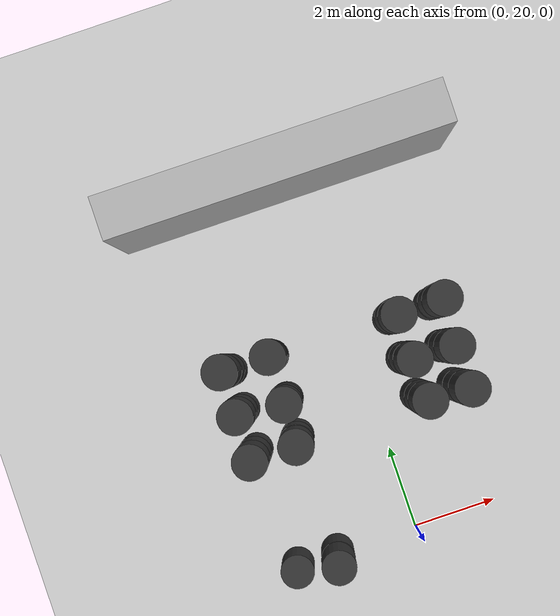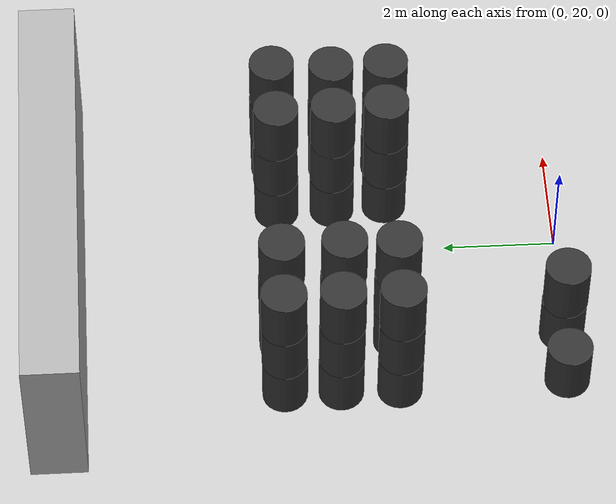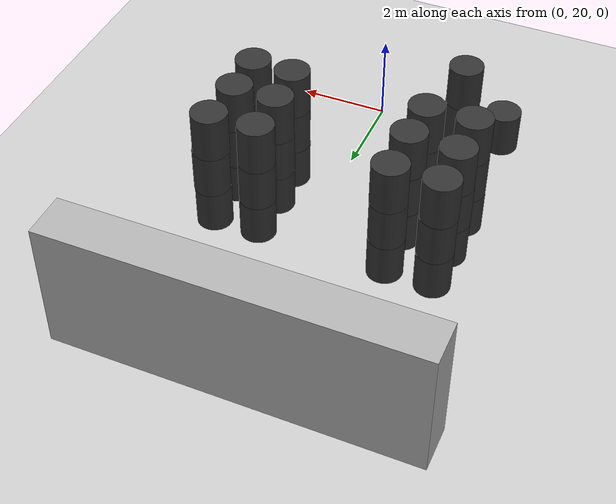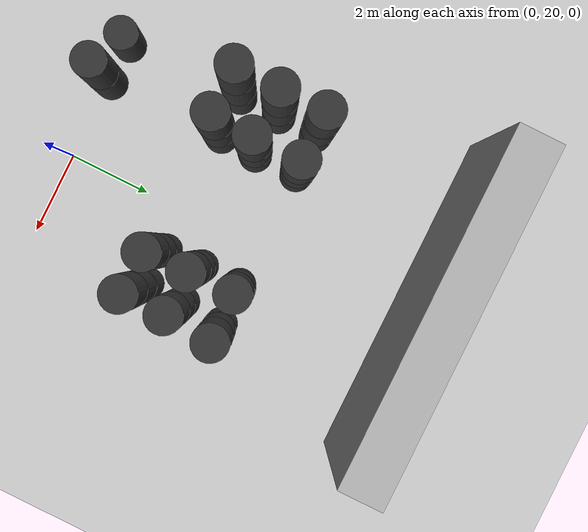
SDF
<sdf version="1.6">
 <world name="default">
  <include><uri>model://ground_plane</uri></include>
  <model name="wall_3">
   <pose frame="sim_world">-0.5 29.0 1.5 0 0 0</pose>
   <static>True</static>
   <link name="wall_3_link">
    <inertial>
     <mass>100</mass>
     <inertia>
      <ixx>0.166667</ixx>
      <ixy>0</ixy>
      <ixz>0</ixz>
      <iyy>0.166667</iyy>
      <iyz>0</iyz>
      <izz>0.166667</izz>
     </inertia>
    </inertial>
    <collision name="wall_3_collision">
     <geometry><box><size>8.0 1.0 3.0</size></box></geometry>
     <max_contacts>100</max_contacts>
    </collision>
    <visual name="wall_3_visual">
     <geometry><box><size>8.0 1.0 3.0</size></box></geometry>
     <material><ambient>0.7 0.7 0.7 1</ambient><diffuse>0.7 0.7 0.7 1</diffuse></material>
    </visual>
   </link>
  </model>
  <model name="cylinder_33">
   <pose frame="sim_world">-2.99564388703 20.0531173185 0.5 0 -0 0</pose>
   <static>True</static>
   <link name="cylinder_33_link">
    <inertial>
     <mass>100</mass>
     <inertia><ixx>0.145833</ixx><ixy>0</ixy><ixz>0</ixz><iyy>0.145833</iyy><iyz>0</iyz><izz>0.125</izz></inertia>
    </inertial>
    <collision name="cylinder_33_collision">
     <geometry><cylinder><length>1.0</length><radius>0.4</radius></cylinder></geometry>
     <max_contacts>100</max_contacts>
    </collision>
    <visual name="cylinder_33_visual">
     <geometry><cylinder><length>1.0</length><radius>0.4</radius></cylinder></geometry>
     <material><ambient>0.2 0.2 0.2 1</ambient><diffuse>0.2 0.2 0.2 1</diffuse></material>
    </visual>
   </link>
  </model>
  <model name="cylinder_36">
   <pose frame="sim_world">-3.05348859282 23.0096410358 0.5 0 -0 0</pose>
   <static>True</static>
   <link name="cylinder_36_link">
    <inertial>
     <mass>100</mass>
     <inertia><ixx>0.145833</ixx><ixy>0</ixy><ixz>0</ixz><iyy>0.145833</iyy><iyz>0</iyz><izz>0.125</izz></inertia>
    </inertial>
    <collision name="cylinder_36_collision">
     <geometry><cylinder><length>1.0</length><radius>0.4</radius></cylinder></geometry>
     <max_contacts>100</max_contacts>
    </collision>
    <visual name="cylinder_36_visual">
     <geometry><cylinder><length>1.0</length><radius>0.4</radius></cylinder></geometry>
     <material><ambient>0.2 0.2 0.2 1</ambient><diffuse>0.2 0.2 0.2 1</diffuse></material>
    </visual>
   </link>
  </model>
  <model name="cylinder_37">
   <pose frame="sim_world">-3.05013833795 23.0075990019 1.5 0 -0 0</pose>
   <static>True</static>
   <link name="cylinder_37_link">
    <inertial>
     <mass>100</mass>
     <inertia><ixx>0.145833</ixx><ixy>0</ixy><ixz>0</ixz><iyy>0.145833</iyy><iyz>0</iyz><izz>0.125</izz></inertia>
    </inertial>
    <collision name="cylinder_37_collision">
     <geometry><cylinder><length>1.0</length><radius>0.4</radius></cylinder></geometry>
     <max_contacts>100</max_contacts>
    </collision>
    <visual name="cylinder_37_visual">
     <geometry><cylinder><length>1.0</length><radius>0.4</radius></cylinder></geometry>
     <material><ambient>0.2 0.2 0.2 1</ambient><diffuse>0.2 0.2 0.2 1</diffuse></material>
    </visual>
   </link>
  </model>
  <model name="cylinder_38">
   <pose frame="sim_world">-3.04901959713 23.0092645543 2.5 0 -0 0</pose>
   <static>True</static>
   <link name="cylinder_38_link">
    <inertial>
     <mass>100</mass>
     <inertia><ixx>0.145833</ixx><ixy>0</ixy><ixz>0</ixz><iyy>0.145833</iyy><iyz>0</iyz><izz>0.125</izz></inertia>
    </inertial>
    <collision name="cylinder_38_collision">
     <geometry><cylinder><length>1.0</length><radius>0.4</radius></cylinder></geometry>
     <max_contacts>100</max_contacts>
    </collision>
    <visual name="cylinder_38_visual">
     <geometry><cylinder><length>1.0</length><radius>0.4</radius></cylinder></geometry>
     <material><ambient>0.2 0.2 0.2 1</ambient><diffuse>0.2 0.2 0.2 1</diffuse></material>
    </visual>
   </link>
  </model>
  <model name="cylinder_39">
   <pose frame="sim_world">-3.04549401953 24.0413131945 0.5 0 -0 0</pose>
   <static>True</static>
   <link name="cylinder_39_link">
    <inertial>
     <mass>100</mass>
     <inertia><ixx>0.145833</ixx><ixy>0</ixy><ixz>0</ixz><iyy>0.145833</iyy><iyz>0</iyz><izz>0.125</izz></inertia>
    </inertial>
    <collision name="cylinder_39_collision">
     <geometry><cylinder><length>1.0</length><radius>0.4</radius></cylinder></geometry>
     <max_contacts>100</max_contacts>
    </collision>
    <visual name="cylinder_39_visual">
     <geometry><cylinder><length>1.0</length><radius>0.4</radius></cylinder></geometry>
     <material><ambient>0.2 0.2 0.2 1</ambient><diffuse>0.2 0.2 0.2 1</diffuse></material>
    </visual>
   </link>
  </model>
  <model name="cylinder_40">
   <pose frame="sim_world">-3.04982680882 24.0381716794 1.5 0 -0 0</pose>
   <static>True</static>
   <link name="cylinder_40_link">
    <inertial>
     <mass>100</mass>
     <inertia><ixx>0.145833</ixx><ixy>0</ixy><ixz>0</ixz><iyy>0.145833</iyy><iyz>0</iyz><izz>0.125</izz></inertia>
    </inertial>
    <collision name="cylinder_40_collision">
     <geometry><cylinder><length>1.0</length><radius>0.4</radius></cylinder></geometry>
     <max_contacts>100</max_contacts>
    </collision>
    <visual name="cylinder_40_visual">
     <geometry><cylinder><length>1.0</length><radius>0.4</radius></cylinder></geometry>
     <material><ambient>0.2 0.2 0.2 1</ambient><diffuse>0.2 0.2 0.2 1</diffuse></material>
    </visual>
   </link>
  </model>
  <model name="cylinder_41">
   <pose frame="sim_world">-3.03841250034 24.0302606081 2.5 0 -0 0</pose>
   <static>True</static>
   <link name="cylinder_41_link">
    <inertial>
     <mass>100</mass>
     <inertia><ixx>0.145833</ixx><ixy>0</ixy><ixz>0</ixz><iyy>0.145833</iyy><iyz>0</iyz><izz>0.125</izz></inertia>
    </inertial>
    <collision name="cylinder_41_collision">
     <geometry><cylinder><length>1.0</length><radius>0.4</radius></cylinder></geometry>
     <max_contacts>100</max_contacts>
    </collision>
    <visual name="cylinder_41_visual">
     <geometry><cylinder><length>1.0</length><radius>0.4</radius></cylinder></geometry>
     <material><ambient>0.2 0.2 0.2 1</ambient><diffuse>0.2 0.2 0.2 1</diffuse></material>
    </visual>
   </link>
  </model>
  <model name="cylinder_42">
   <pose frame="sim_world">-3.03273412641 25.028604352 0.5 0 -0 0</pose>
   <static>True</static>
   <link name="cylinder_42_link">
    <inertial>
     <mass>100</mass>
     <inertia><ixx>0.145833</ixx><ixy>0</ixy><ixz>0</ixz><iyy>0.145833</iyy><iyz>0</iyz><izz>0.125</izz></inertia>
    </inertial>
    <collision name="cylinder_42_collision">
     <geometry><cylinder><length>1.0</length><radius>0.4</radius></cylinder></geometry>
     <max_contacts>100</max_contacts>
    </collision>
    <visual name="cylinder_42_visual">
     <geometry><cylinder><length>1.0</length><radius>0.4</radius></cylinder></geometry>
     <material><ambient>0.2 0.2 0.2 1</ambient><diffuse>0.2 0.2 0.2 1</diffuse></material>
    </visual>
   </link>
  </model>
  <model name="cylinder_43">
   <pose frame="sim_world">-3.02985355663 25.0349381711 1.5 0 -0 0</pose>
   <static>True</static>
   <link name="cylinder_43_link">
    <inertial>
     <mass>100</mass>
     <inertia><ixx>0.145833</ixx><ixy>0</ixy><ixz>0</ixz><iyy>0.145833</iyy><iyz>0</iyz><izz>0.125</izz></inertia>
    </inertial>
    <collision name="cylinder_43_collision">
     <geometry><cylinder><length>1.0</length><radius>0.4</radius></cylinder></geometry>
     <max_contacts>100</max_contacts>
    </collision>
    <visual name="cylinder_43_visual">
     <geometry><cylinder><length>1.0</length><radius>0.4</radius></cylinder></geometry>
     <material><ambient>0.2 0.2 0.2 1</ambient><diffuse>0.2 0.2 0.2 1</diffuse></material>
    </visual>
   </link>
  </model>
  <model name="cylinder_44">
   <pose frame="sim_world">-3.04586345049 25.042305277 2.5 0 -0 0</pose>
   <static>True</static>
   <link name="cylinder_44_link">
    <inertial>
     <mass>100</mass>
     <inertia><ixx>0.145833</ixx><ixy>0</ixy><ixz>0</ixz><iyy>0.145833</iyy><iyz>0</iyz><izz>0.125</izz></inertia>
    </inertial>
    <collision name="cylinder_44_collision">
     <geometry><cylinder><length>1.0</length><radius>0.4</radius></cylinder></geometry>
     <max_contacts>100</max_contacts>
    </collision>
    <visual name="cylinder_44_visual">
     <geometry><cylinder><length>1.0</length><radius>0.4</radius></cylinder></geometry>
     <material><ambient>0.2 0.2 0.2 1</ambient><diffuse>0.2 0.2 0.2 1</diffuse></material>
    </visual>
   </link>
  </model>
  <model name="cylinder_78">
   <pose frame="sim_world">-1.98751339361 20.0540344784 0.5 0 -0 0</pose>
   <static>True</static>
   <link name="cylinder_78_link">
    <inertial>
     <mass>100</mass>
     <inertia><ixx>0.145833</ixx><ixy>0</ixy><ixz>0</ixz><iyy>0.145833</iyy><iyz>0</iyz><izz>0.125</izz></inertia>
    </inertial>
    <collision name="cylinder_78_collision">
     <geometry><cylinder><length>1.0</length><radius>0.4</radius></cylinder></geometry>
     <max_contacts>100</max_contacts>
    </collision>
    <visual name="cylinder_78_visual">
     <geometry><cylinder><length>1.0</length><radius>0.4</radius></cylinder></geometry>
     <material><ambient>0.2 0.2 0.2 1</ambient><diffuse>0.2 0.2 0.2 1</diffuse></material>
    </visual>
   </link>
  </model>
  <model name="cylinder_79">
   <pose frame="sim_world">-1.99566460094 20.0455189403 1.5 0 -0 0</pose>
   <static>True</static>
   <link name="cylinder_79_link">
    <inertial>
     <mass>100</mass>
     <inertia><ixx>0.145833</ixx><ixy>0</ixy><ixz>0</ixz><iyy>0.145833</iyy><iyz>0</iyz><izz>0.125</izz></inertia>
    </inertial>
    <collision name="cylinder_79_collision">
     <geometry><cylinder><length>1.0</length><radius>0.4</radius></cylinder></geometry>
     <max_contacts>100</max_contacts>
    </collision>
    <visual name="cylinder_79_visual">
     <geometry><cylinder><length>1.0</length><radius>0.4</radius></cylinder></geometry>
     <material><ambient>0.2 0.2 0.2 1</ambient><diffuse>0.2 0.2 0.2 1</diffuse></material>
    </visual>
   </link>
  </model>
  <model name="cylinder_81">
   <pose frame="sim_world">-2.00250123207 23.0145800915 0.5 0 -0 0</pose>
   <static>True</static>
   <link name="cylinder_81_link">
    <inertial>
     <mass>100</mass>
     <inertia><ixx>0.145833</ixx><ixy>0</ixy><ixz>0</ixz><iyy>0.145833</iyy><iyz>0</iyz><izz>0.125</izz></inertia>
    </inertial>
    <collision name="cylinder_81_collision">
     <geometry><cylinder><length>1.0</length><radius>0.4</radius></cylinder></geometry>
     <max_contacts>100</max_contacts>
    </collision>
    <visual name="cylinder_81_visual">
     <geometry><cylinder><length>1.0</length><radius>0.4</radius></cylinder></geometry>
     <material><ambient>0.2 0.2 0.2 1</ambient><diffuse>0.2 0.2 0.2 1</diffuse></material>
    </visual>
   </link>
  </model>
  <model name="cylinder_82">
   <pose frame="sim_world">-2.00463147181 23.0228580391 1.5 0 -0 0</pose>
   <static>True</static>
   <link name="cylinder_82_link">
    <inertial>
     <mass>100</mass>
     <inertia><ixx>0.145833</ixx><ixy>0</ixy><ixz>0</ixz><iyy>0.145833</iyy><iyz>0</iyz><izz>0.125</izz></inertia>
    </inertial>
    <collision name="cylinder_82_collision">
     <geometry><cylinder><length>1.0</length><radius>0.4</radius></cylinder></geometry>
     <max_contacts>100</max_contacts>
    </collision>
    <visual name="cylinder_82_visual">
     <geometry><cylinder><length>1.0</length><radius>0.4</radius></cylinder></geometry>
     <material><ambient>0.2 0.2 0.2 1</ambient><diffuse>0.2 0.2 0.2 1</diffuse></material>
    </visual>
   </link>
  </model>
  <model name="cylinder_83">
   <pose frame="sim_world">-2.00676875442 23.0095185006 2.5 0 -0 0</pose>
   <static>True</static>
   <link name="cylinder_83_link">
    <inertial>
     <mass>100</mass>
     <inertia><ixx>0.145833</ixx><ixy>0</ixy><ixz>0</ixz><iyy>0.145833</iyy><iyz>0</iyz><izz>0.125</izz></inertia>
    </inertial>
    <collision name="cylinder_83_collision">
     <geometry><cylinder><length>1.0</length><radius>0.4</radius></cylinder></geometry>
     <max_contacts>100</max_contacts>
    </collision>
    <visual name="cylinder_83_visual">
     <geometry><cylinder><length>1.0</length><radius>0.4</radius></cylinder></geometry>
     <material><ambient>0.2 0.2 0.2 1</ambient><diffuse>0.2 0.2 0.2 1</diffuse></material>
    </visual>
   </link>
  </model>
  <model name="cylinder_84">
   <pose frame="sim_world">-1.95967464457 23.9493410957 0.5 0 -0 0</pose>
   <static>True</static>
   <link name="cylinder_84_link">
    <inertial>
     <mass>100</mass>
     <inertia><ixx>0.145833</ixx><ixy>0</ixy><ixz>0</ixz><iyy>0.145833</iyy><iyz>0</iyz><izz>0.125</izz></inertia>
    </inertial>
    <collision name="cylinder_84_collision">
     <geometry><cylinder><length>1.0</length><radius>0.4</radius></cylinder></geometry>
     <max_contacts>100</max_contacts>
    </collision>
    <visual name="cylinder_84_visual">
     <geometry><cylinder><length>1.0</length><radius>0.4</radius></cylinder></geometry>
     <material><ambient>0.2 0.2 0.2 1</ambient><diffuse>0.2 0.2 0.2 1</diffuse></material>
    </visual>
   </link>
   <model name="radiation_source_cylinder_84">
    <static>true</static>
    <link name="link_radiation_source_cylinder_84">
     <visual name="visual_radiation_source_cylinder_84_0">
      <geometry><box><size>0.1 0.1 0.1</size></box></geometry>
      <material><ambient>1 0.0  0 1.0</ambient><diffuse>1 0.0  0 1.0</diffuse></material>
     </visual>
     <visual name="visual_radiation_source_cylinder_84_1">
      <pose>0 0 2.0 0 0 0</pose>
      <geometry><box><size>0.1 0.1 0.1</size></box></geometry>
      <material><ambient>0 1.0  0 1.0</ambient><diffuse>0 1.0  0 1.0</diffuse></material>
     </visual>
     <sensor name="radiation_source_cylinder_84" type="radiation_source">
      <always_on>1</always_on>
      <update_rate>100.0</update_rate>
      <topic>source_4/gamma</topic>
      <plugin filename="libradiation_source_plugin.so" name="radiation_source_plugin"/>
     </sensor>
    </link>
   </model>
  </model>
  <model name="cylinder_85">
   <pose frame="sim_world">-1.96278501635 23.9575127593 1.5 0 -0 0</pose>
   <static>True</static>
   <link name="cylinder_85_link">
    <inertial>
     <mass>100</mass>
     <inertia><ixx>0.145833</ixx><ixy>0</ixy><ixz>0</ixz><iyy>0.145833</iyy><iyz>0</iyz><izz>0.125</izz></inertia>
    </inertial>
    <collision name="cylinder_85_collision">
     <geometry><cylinder><length>1.0</length><radius>0.4</radius></cylinder></geometry>
     <max_contacts>100</max_contacts>
    </collision>
    <visual name="cylinder_85_visual">
     <geometry><cylinder><length>1.0</length><radius>0.4</radius></cylinder></geometry>
     <material><ambient>0.2 0.2 0.2 1</ambient><diffuse>0.2 0.2 0.2 1</diffuse></material>
    </visual>
   </link>
  </model>
  <model name="cylinder_86">
   <pose frame="sim_world">-1.96021412066 23.9449165852 2.5 0 -0 0</pose>
   <static>True</static>
   <link name="cylinder_86_link">
    <inertial>
     <mass>100</mass>
     <inertia><ixx>0.145833</ixx><ixy>0</ixy><ixz>0</ixz><iyy>0.145833</iyy><iyz>0</iyz><izz>0.125</izz></inertia>
    </inertial>
    <collision name="cylinder_86_collision">
     <geometry><cylinder><length>1.0</length><radius>0.4</radius></cylinder></geometry>
     <max_contacts>100</max_contacts>
    </collision>
    <visual name="cylinder_86_visual">
     <geometry><cylinder><length>1.0</length><radius>0.4</radius></cylinder></geometry>
     <material><ambient>0.2 0.2 0.2 1</ambient><diffuse>0.2 0.2 0.2 1</diffuse></material>
    </visual>
   </link>
  </model>
  <model name="cylinder_87">
   <pose frame="sim_world">-1.97056957296 25.032899794 0.5 0 -0 0</pose>
   <static>True</static>
   <link name="cylinder_87_link">
    <inertial>
     <mass>100</mass>
     <inertia><ixx>0.145833</ixx><ixy>0</ixy><ixz>0</ixz><iyy>0.145833</iyy><iyz>0</iyz><izz>0.125</izz></inertia>
    </inertial>
    <collision name="cylinder_87_collision">
     <geometry><cylinder><length>1.0</length><radius>0.4</radius></cylinder></geometry>
     <max_contacts>100</max_contacts>
    </collision>
    <visual name="cylinder_87_visual">
     <geometry><cylinder><length>1.0</length><radius>0.4</radius></cylinder></geometry>
     <material><ambient>0.2 0.2 0.2 1</ambient><diffuse>0.2 0.2 0.2 1</diffuse></material>
    </visual>
   </link>
  </model>
  <model name="cylinder_88">
   <pose frame="sim_world">-1.97275095101 25.0373690375 1.5 0 -0 0</pose>
   <static>True</static>
   <link name="cylinder_88_link">
    <inertial>
     <mass>100</mass>
     <inertia><ixx>0.145833</ixx><ixy>0</ixy><ixz>0</ixz><iyy>0.145833</iyy><iyz>0</iyz><izz>0.125</izz></inertia>
    </inertial>
    <collision name="cylinder_88_collision">
     <geometry><cylinder><length>1.0</length><radius>0.4</radius></cylinder></geometry>
     <max_contacts>100</max_contacts>
    </collision>
    <visual name="cylinder_88_visual">
     <geometry><cylinder><length>1.0</length><radius>0.4</radius></cylinder></geometry>
     <material><ambient>0.2 0.2 0.2 1</ambient><diffuse>0.2 0.2 0.2 1</diffuse></material>
    </visual>
   </link>
  </model>
  <model name="cylinder_89">
   <pose frame="sim_world">-1.96409279283 25.0248204652 2.5 0 -0 0</pose>
   <static>True</static>
   <link name="cylinder_89_link">
    <inertial>
     <mass>100</mass>
     <inertia><ixx>0.145833</ixx><ixy>0</ixy><ixz>0</ixz><iyy>0.145833</iyy><iyz>0</iyz><izz>0.125</izz></inertia>
    </inertial>
    <collision name="cylinder_89_collision">
     <geometry><cylinder><length>1.0</length><radius>0.4</radius></cylinder></geometry>
     <max_contacts>100</max_contacts>
    </collision>
    <visual name="cylinder_89_visual">
     <geometry><cylinder><length>1.0</length><radius>0.4</radius></cylinder></geometry>
     <material><ambient>0.2 0.2 0.2 1</ambient><diffuse>0.2 0.2 0.2 1</diffuse></material>
    </visual>
   </link>
  </model>
  <model name="cylinder_126">
   <pose frame="sim_world">1.03753550574 23.0257858567 0.5 0 -0 0</pose>
   <static>True</static>
   <link name="cylinder_126_link">
    <inertial>
     <mass>100</mass>
     <inertia><ixx>0.145833</ixx><ixy>0</ixy><ixz>0</ixz><iyy>0.145833</iyy><iyz>0</iyz><izz>0.125</izz></inertia>
    </inertial>
    <collision name="cylinder_126_collision">
     <geometry><cylinder><length>1.0</length><radius>0.4</radius></cylinder></geometry>
     <max_contacts>100</max_contacts>
    </collision>
    <visual name="cylinder_126_visual">
     <geometry><cylinder><length>1.0</length><radius>0.4</radius></cylinder></geometry>
     <material><ambient>0.2 0.2 0.2 1</ambient><diffuse>0.2 0.2 0.2 1</diffuse></material>
    </visual>
   </link>
  </model>
  <model name="cylinder_127">
   <pose frame="sim_world">1.04466648664 23.0144106775 1.5 0 -0 0</pose>
   <static>True</static>
   <link name="cylinder_127_link">
    <inertial>
     <mass>100</mass>
     <inertia><ixx>0.145833</ixx><ixy>0</ixy><ixz>0</ixz><iyy>0.145833</iyy><iyz>0</iyz><izz>0.125</izz></inertia>
    </inertial>
    <collision name="cylinder_127_collision">
     <geometry><cylinder><length>1.0</length><radius>0.4</radius></cylinder></geometry>
     <max_contacts>100</max_contacts>
    </collision>
    <visual name="cylinder_127_visual">
     <geometry><cylinder><length>1.0</length><radius>0.4</radius></cylinder></geometry>
     <material><ambient>0.2 0.2 0.2 1</ambient><diffuse>0.2 0.2 0.2 1</diffuse></material>
    </visual>
   </link>
  </model>
  <model name="cylinder_128">
   <pose frame="sim_world">1.03936682924 23.0226148301 2.5 0 -0 0</pose>
   <static>True</static>
   <link name="cylinder_128_link">
    <inertial>
     <mass>100</mass>
     <inertia><ixx>0.145833</ixx><ixy>0</ixy><ixz>0</ixz><iyy>0.145833</iyy><iyz>0</iyz><izz>0.125</izz></inertia>
    </inertial>
    <collision name="cylinder_128_collision">
     <geometry><cylinder><length>1.0</length><radius>0.4</radius></cylinder></geometry>
     <max_contacts>100</max_contacts>
    </collision>
    <visual name="cylinder_128_visual">
     <geometry><cylinder><length>1.0</length><radius>0.4</radius></cylinder></geometry>
     <material><ambient>0.2 0.2 0.2 1</ambient><diffuse>0.2 0.2 0.2 1</diffuse></material>
    </visual>
   </link>
  </model>
  <model name="cylinder_129">
   <pose frame="sim_world">0.99687533633 23.9791355983 0.5 0 -0 0</pose>
   <static>True</static>
   <link name="cylinder_129_link">
    <inertial>
     <mass>100</mass>
     <inertia><ixx>0.145833</ixx><ixy>0</ixy><ixz>0</ixz><iyy>0.145833</iyy><iyz>0</iyz><izz>0.125</izz></inertia>
    </inertial>
    <collision name="cylinder_129_collision">
     <geometry><cylinder><length>1.0</length><radius>0.4</radius></cylinder></geometry>
     <max_contacts>100</max_contacts>
    </collision>
    <visual name="cylinder_129_visual">
     <geometry><cylinder><length>1.0</length><radius>0.4</radius></cylinder></geometry>
     <material><ambient>0.2 0.2 0.2 1</ambient><diffuse>0.2 0.2 0.2 1</diffuse></material>
    </visual>
   </link>
   <model name="radiation_source_cylinder_129">
    <static>true</static>
    <link name="link_radiation_source_cylinder_129">
     <visual name="visual_radiation_source_cylinder_129_0">
      <geometry><box><size>0.1 0.1 0.1</size></box></geometry>
      <material><ambient>1 0.0  0 1.0</ambient><diffuse>1 0.0  0 1.0</diffuse></material>
     </visual>
     <visual name="visual_radiation_source_cylinder_129_1">
      <pose>0 0 2.0 0 0 0</pose>
      <geometry><box><size>0.1 0.1 0.1</size></box></geometry>
      <material><ambient>0 1.0  0 1.0</ambient><diffuse>0 1.0  0 1.0</diffuse></material>
     </visual>
     <sensor name="radiation_source_cylinder_129" type="radiation_source">
      <always_on>1</always_on>
      <update_rate>100.0</update_rate>
      <topic>source_5/gamma</topic>
      <plugin filename="libradiation_source_plugin.so" name="radiation_source_plugin"/>
     </sensor>
    </link>
   </model>
  </model>
  <model name="cylinder_130">
   <pose frame="sim_world">0.994214728046 23.9818286646 1.5 0 -0 0</pose>
   <static>True</static>
   <link name="cylinder_130_link">
    <inertial>
     <mass>100</mass>
     <inertia><ixx>0.145833</ixx><ixy>0</ixy><ixz>0</ixz><iyy>0.145833</iyy><iyz>0</iyz><izz>0.125</izz></inertia>
    </inertial>
    <collision name="cylinder_130_collision">
     <geometry><cylinder><length>1.0</length><radius>0.4</radius></cylinder></geometry>
     <max_contacts>100</max_contacts>
    </collision>
    <visual name="cylinder_130_visual">
     <geometry><cylinder><length>1.0</length><radius>0.4</radius></cylinder></geometry>
     <material><ambient>0.2 0.2 0.2 1</ambient><diffuse>0.2 0.2 0.2 1</diffuse></material>
    </visual>
   </link>
  </model>
  <model name="cylinder_131">
   <pose frame="sim_world">1.00767810017 23.9695016228 2.5 0 -0 0</pose>
   <static>True</static>
   <link name="cylinder_131_link">
    <inertial>
     <mass>100</mass>
     <inertia><ixx>0.145833</ixx><ixy>0</ixy><ixz>0</ixz><iyy>0.145833</iyy><iyz>0</iyz><izz>0.125</izz></inertia>
    </inertial>
    <collision name="cylinder_131_collision">
     <geometry><cylinder><length>1.0</length><radius>0.4</radius></cylinder></geometry>
     <max_contacts>100</max_contacts>
    </collision>
    <visual name="cylinder_131_visual">
     <geometry><cylinder><length>1.0</length><radius>0.4</radius></cylinder></geometry>
     <material><ambient>0.2 0.2 0.2 1</ambient><diffuse>0.2 0.2 0.2 1</diffuse></material>
    </visual>
   </link>
  </model>
  <model name="cylinder_132">
   <pose frame="sim_world">0.99426721578 24.9846050351 0.5 0 -0 0</pose>
   <static>True</static>
   <link name="cylinder_132_link">
    <inertial>
     <mass>100</mass>
     <inertia><ixx>0.145833</ixx><ixy>0</ixy><ixz>0</ixz><iyy>0.145833</iyy><iyz>0</iyz><izz>0.125</izz></inertia>
    </inertial>
    <collision name="cylinder_132_collision">
     <geometry><cylinder><length>1.0</length><radius>0.4</radius></cylinder></geometry>
     <max_contacts>100</max_contacts>
    </collision>
    <visual name="cylinder_132_visual">
     <geometry><cylinder><length>1.0</length><radius>0.4</radius></cylinder></geometry>
     <material><ambient>0.2 0.2 0.2 1</ambient><diffuse>0.2 0.2 0.2 1</diffuse></material>
    </visual>
   </link>
  </model>
  <model name="cylinder_133">
   <pose frame="sim_world">0.981041609958 25.0017454738 1.5 0 -0 0</pose>
   <static>True</static>
   <link name="cylinder_133_link">
    <inertial>
     <mass>100</mass>
     <inertia><ixx>0.145833</ixx><ixy>0</ixy><ixz>0</ixz><iyy>0.145833</iyy><iyz>0</iyz><izz>0.125</izz></inertia>
    </inertial>
    <collision name="cylinder_133_collision">
     <geometry><cylinder><length>1.0</length><radius>0.4</radius></cylinder></geometry>
     <max_contacts>100</max_contacts>
    </collision>
    <visual name="cylinder_133_visual">
     <geometry><cylinder><length>1.0</length><radius>0.4</radius></cylinder></geometry>
     <material><ambient>0.2 0.2 0.2 1</ambient><diffuse>0.2 0.2 0.2 1</diffuse></material>
    </visual>
   </link>
  </model>
  <model name="cylinder_134">
   <pose frame="sim_world">0.987209217085 24.9850103576 2.5 0 -0 0</pose>
   <static>True</static>
   <link name="cylinder_134_link">
    <inertial>
     <mass>100</mass>
     <inertia><ixx>0.145833</ixx><ixy>0</ixy><ixz>0</ixz><iyy>0.145833</iyy><iyz>0</iyz><izz>0.125</izz></inertia>
    </inertial>
    <collision name="cylinder_134_collision">
     <geometry><cylinder><length>1.0</length><radius>0.4</radius></cylinder></geometry>
     <max_contacts>100</max_contacts>
    </collision>
    <visual name="cylinder_134_visual">
     <geometry><cylinder><length>1.0</length><radius>0.4</radius></cylinder></geometry>
     <material><ambient>0.2 0.2 0.2 1</ambient><diffuse>0.2 0.2 0.2 1</diffuse></material>
    </visual>
   </link>
  </model>
  <model name="cylinder_171">
   <pose frame="sim_world">1.96493743746 22.9888957979 0.5 0 -0 0</pose>
   <static>True</static>
   <link name="cylinder_171_link">
    <inertial>
     <mass>100</mass>
     <inertia><ixx>0.145833</ixx><ixy>0</ixy><ixz>0</ixz><iyy>0.145833</iyy><iyz>0</iyz><izz>0.125</izz></inertia>
    </inertial>
    <collision name="cylinder_171_collision">
     <geometry><cylinder><length>1.0</length><radius>0.4</radius></cylinder></geometry>
     <max_contacts>100</max_contacts>
    </collision>
    <visual name="cylinder_171_visual">
     <geometry><cylinder><length>1.0</length><radius>0.4</radius></cylinder></geometry>
     <material><ambient>0.2 0.2 0.2 1</ambient><diffuse>0.2 0.2 0.2 1</diffuse></material>
    </visual>
   </link>
  </model>
  <model name="cylinder_172">
   <pose frame="sim_world">1.97783468401 22.9783600544 1.5 0 -0 0</pose>
   <static>True</static>
   <link name="cylinder_172_link">
    <inertial>
     <mass>100</mass>
     <inertia><ixx>0.145833</ixx><ixy>0</ixy><ixz>0</ixz><iyy>0.145833</iyy><iyz>0</iyz><izz>0.125</izz></inertia>
    </inertial>
    <collision name="cylinder_172_collision">
     <geometry><cylinder><length>1.0</length><radius>0.4</radius></cylinder></geometry>
     <max_contacts>100</max_contacts>
    </collision>
    <visual name="cylinder_172_visual">
     <geometry><cylinder><length>1.0</length><radius>0.4</radius></cylinder></geometry>
     <material><ambient>0.2 0.2 0.2 1</ambient><diffuse>0.2 0.2 0.2 1</diffuse></material>
    </visual>
   </link>
  </model>
  <model name="cylinder_173">
   <pose frame="sim_world">1.97713846697 22.9784148133 2.5 0 -0 0</pose>
   <static>True</static>
   <link name="cylinder_173_link">
    <inertial>
     <mass>100</mass>
     <inertia><ixx>0.145833</ixx><ixy>0</ixy><ixz>0</ixz><iyy>0.145833</iyy><iyz>0</iyz><izz>0.125</izz></inertia>
    </inertial>
    <collision name="cylinder_173_collision">
     <geometry><cylinder><length>1.0</length><radius>0.4</radius></cylinder></geometry>
     <max_contacts>100</max_contacts>
    </collision>
    <visual name="cylinder_173_visual">
     <geometry><cylinder><length>1.0</length><radius>0.4</radius></cylinder></geometry>
     <material><ambient>0.2 0.2 0.2 1</ambient><diffuse>0.2 0.2 0.2 1</diffuse></material>
    </visual>
   </link>
  </model>
  <model name="cylinder_174">
   <pose frame="sim_world">1.97350529623 23.9553193765 0.5 0 -0 0</pose>
   <static>True</static>
   <link name="cylinder_174_link">
    <inertial>
     <mass>100</mass>
     <inertia><ixx>0.145833</ixx><ixy>0</ixy><ixz>0</ixz><iyy>0.145833</iyy><iyz>0</iyz><izz>0.125</izz></inertia>
    </inertial>
    <collision name="cylinder_174_collision">
     <geometry><cylinder><length>1.0</length><radius>0.4</radius></cylinder></geometry>
     <max_contacts>100</max_contacts>
    </collision>
    <visual name="cylinder_174_visual">
     <geometry><cylinder><length>1.0</length><radius>0.4</radius></cylinder></geometry>
     <material><ambient>0.2 0.2 0.2 1</ambient><diffuse>0.2 0.2 0.2 1</diffuse></material>
    </visual>
   </link>
  </model>
  <model name="cylinder_175">
   <pose frame="sim_world">1.9600749218 23.9617100785 1.5 0 -0 0</pose>
   <static>True</static>
   <link name="cylinder_175_link">
    <inertial>
     <mass>100</mass>
     <inertia><ixx>0.145833</ixx><ixy>0</ixy><ixz>0</ixz><iyy>0.145833</iyy><iyz>0</iyz><izz>0.125</izz></inertia>
    </inertial>
    <collision name="cylinder_175_collision">
     <geometry><cylinder><length>1.0</length><radius>0.4</radius></cylinder></geometry>
     <max_contacts>100</max_contacts>
    </collision>
    <visual name="cylinder_175_visual">
     <geometry><cylinder><length>1.0</length><radius>0.4</radius></cylinder></geometry>
     <material><ambient>0.2 0.2 0.2 1</ambient><diffuse>0.2 0.2 0.2 1</diffuse></material>
    </visual>
   </link>
  </model>
  <model name="cylinder_176">
   <pose frame="sim_world">1.96001470659 23.9552370134 2.5 0 -0 0</pose>
   <static>True</static>
   <link name="cylinder_176_link">
    <inertial>
     <mass>100</mass>
     <inertia><ixx>0.145833</ixx><ixy>0</ixy><ixz>0</ixz><iyy>0.145833</iyy><iyz>0</iyz><izz>0.125</izz></inertia>
    </inertial>
    <collision name="cylinder_176_collision">
     <geometry><cylinder><length>1.0</length><radius>0.4</radius></cylinder></geometry>
     <max_contacts>100</max_contacts>
    </collision>
    <visual name="cylinder_176_visual">
     <geometry><cylinder><length>1.0</length><radius>0.4</radius></cylinder></geometry>
     <material><ambient>0.2 0.2 0.2 1</ambient><diffuse>0.2 0.2 0.2 1</diffuse></material>
    </visual>
   </link>
  </model>
  <model name="cylinder_177">
   <pose frame="sim_world">2.03927532248 25.0053637054 0.5 0 -0 0</pose>
   <static>True</static>
   <link name="cylinder_177_link">
    <inertial>
     <mass>100</mass>
     <inertia><ixx>0.145833</ixx><ixy>0</ixy><ixz>0</ixz><iyy>0.145833</iyy><iyz>0</iyz><izz>0.125</izz></inertia>
    </inertial>
    <collision name="cylinder_177_collision">
     <geometry><cylinder><length>1.0</length><radius>0.4</radius></cylinder></geometry>
     <max_contacts>100</max_contacts>
    </collision>
    <visual name="cylinder_177_visual">
     <geometry><cylinder><length>1.0</length><radius>0.4</radius></cylinder></geometry>
     <material><ambient>0.2 0.2 0.2 1</ambient><diffuse>0.2 0.2 0.2 1</diffuse></material>
    </visual>
   </link>
  </model>
  <model name="cylinder_178">
   <pose frame="sim_world">2.0485992691 25.0182582357 1.5 0 -0 0</pose>
   <static>True</static>
   <link name="cylinder_178_link">
    <inertial>
     <mass>100</mass>
     <inertia><ixx>0.145833</ixx><ixy>0</ixy><ixz>0</ixz><iyy>0.145833</iyy><iyz>0</iyz><izz>0.125</izz></inertia>
    </inertial>
    <collision name="cylinder_178_collision">
     <geometry><cylinder><length>1.0</length><radius>0.4</radius></cylinder></geometry>
     <max_contacts>100</max_contacts>
    </collision>
    <visual name="cylinder_178_visual">
     <geometry><cylinder><length>1.0</length><radius>0.4</radius></cylinder></geometry>
     <material><ambient>0.2 0.2 0.2 1</ambient><diffuse>0.2 0.2 0.2 1</diffuse></material>
    </visual>
   </link>
  </model>
  <model name="cylinder_179">
   <pose frame="sim_world">2.0336250992 25.0099353457 2.5 0 -0 0</pose>
   <static>True</static>
   <link name="cylinder_179_link">
    <inertial>
     <mass>100</mass>
     <inertia><ixx>0.145833</ixx><ixy>0</ixy><ixz>0</ixz><iyy>0.145833</iyy><iyz>0</iyz><izz>0.125</izz></inertia>
    </inertial>
    <collision name="cylinder_179_collision">
     <geometry><cylinder><length>1.0</length><radius>0.4</radius></cylinder></geometry>
     <max_contacts>100</max_contacts>
    </collision>
    <visual name="cylinder_179_visual">
     <geometry><cylinder><length>1.0</length><radius>0.4</radius></cylinder></geometry>
     <material><ambient>0.2 0.2 0.2 1</ambient><diffuse>0.2 0.2 0.2 1</diffuse></material>
    </visual>
   </link>
  </model>
  <model name="ground_plane"><link name="ground_plane"/></model>
 </world>
</sdf>
